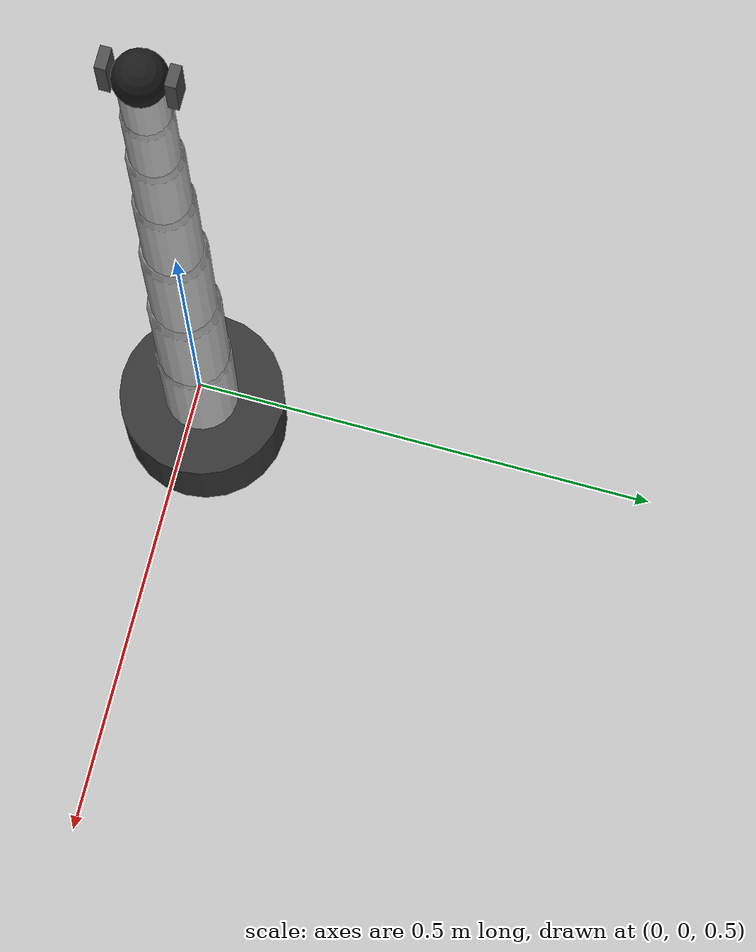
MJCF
<mujoco model="kuka_basic">
  <compiler angle="radian" autolimits="true"/>
  <option timestep="0.002" gravity="0 0 -9.81"/>

  <default>
    <joint damping="2.0" armature="0.05" frictionloss="0.1"/>
    <geom friction="0.7 0.02 0.001" rgba="0.75 0.75 0.75 1"/>
  </default>

  <worldbody>
    <body name="robot0/base" pos="0.0 0.0 0.4">
      <geom type="cylinder" size="0.09 0.06" rgba="0.2 0.2 0.2 1"/>

      <body name="robot0/link1" pos="0 0 0.06">
        <joint name="robot0/joint1" type="hinge" axis="0 0 1" range="-2.97 2.97"/>
        <geom type="capsule" fromto="0 0 0 0 0 0.18" size="0.04"/>

        <body name="robot0/link2" pos="0 0 0.18">
          <joint name="robot0/joint2" type="hinge" axis="0 1 0" range="-2.09 2.09"/>
          <geom type="capsule" fromto="0 0 0 0 0 0.2" size="0.038"/>

          <body name="robot0/link3" pos="0 0 0.2">
            <joint name="robot0/joint3" type="hinge" axis="0 1 0" range="-2.97 2.97"/>
            <geom type="capsule" fromto="0 0 0 0 0 0.2" size="0.034"/>

            <body name="robot0/link4" pos="0 0 0.2">
              <joint name="robot0/joint4" type="hinge" axis="1 0 0" range="-2.09 2.09"/>
              <geom type="capsule" fromto="0 0 0 0 0 0.17" size="0.03"/>

              <body name="robot0/link5" pos="0 0 0.17">
                <joint name="robot0/joint5" type="hinge" axis="0 1 0" range="-2.97 2.97"/>
                <geom type="capsule" fromto="0 0 0 0 0 0.14" size="0.027"/>

                <body name="robot0/link6" pos="0 0 0.14">
                  <joint name="robot0/joint6" type="hinge" axis="1 0 0" range="-2.09 2.09"/>
                  <geom type="capsule" fromto="0 0 0 0 0 0.12" size="0.024"/>

                  <body name="robot0/link7" pos="0 0 0.12">
                    <joint name="robot0/joint7" type="hinge" axis="0 1 0" range="-3.05 3.05"/>
                    <geom type="capsule" fromto="0 0 0 0 0 0.1" size="0.022"/>

                    <body name="robot0/ee_link" pos="0 0 0.1">
                      <geom type="sphere" size="0.025" rgba="0.1 0.1 0.1 1"/>
                      <camera name="eye_in_hand" pos="0.0 0.0 0.03" quat="0.707 0.707 0 0"/>

                      <body name="robot0/left_finger" pos="0 0.03 0">
                        <joint name="robot0/finger_left" type="slide" axis="0 1 0" range="0 0.04"/>
                        <geom type="box" size="0.01 0.005 0.03" rgba="0.3 0.3 0.3 1"/>
                      </body>
                      <body name="robot0/right_finger" pos="0 -0.03 0">
                        <joint name="robot0/finger_right" type="slide" axis="0 -1 0" range="0 0.04"/>
                        <geom type="box" size="0.01 0.005 0.03" rgba="0.3 0.3 0.3 1"/>
                      </body>
                    </body>
                  </body>
                </body>
              </body>
            </body>
          </body>
        </body>
      </body>
    </body>
  </worldbody>

  <actuator>
    <position name="robot0/act1" joint="robot0/joint1" kp="150" ctrlrange="-2.97 2.97"/>
    <position name="robot0/act2" joint="robot0/joint2" kp="140" ctrlrange="-2.09 2.09"/>
    <position name="robot0/act3" joint="robot0/joint3" kp="130" ctrlrange="-2.97 2.97"/>
    <position name="robot0/act4" joint="robot0/joint4" kp="110" ctrlrange="-2.09 2.09"/>
    <position name="robot0/act5" joint="robot0/joint5" kp="90" ctrlrange="-2.97 2.97"/>
    <position name="robot0/act6" joint="robot0/joint6" kp="80" ctrlrange="-2.09 2.09"/>
    <position name="robot0/act7" joint="robot0/joint7" kp="70" ctrlrange="-3.05 3.05"/>
    <position name="robot0/grip_left" joint="robot0/finger_left" kp="300" ctrlrange="0 0.04"/>
    <position name="robot0/grip_right" joint="robot0/finger_right" kp="300" ctrlrange="0 0.04"/>
  </actuator>
</mujoco>
